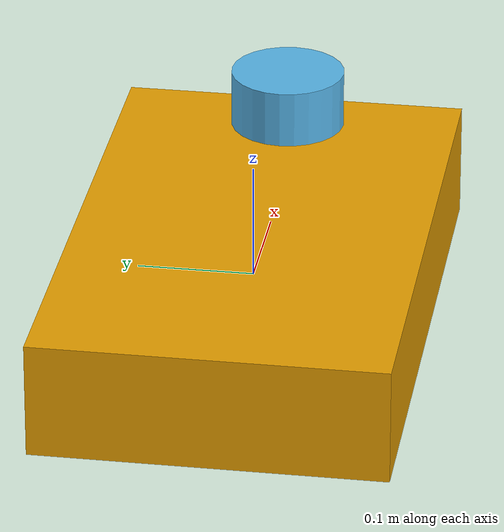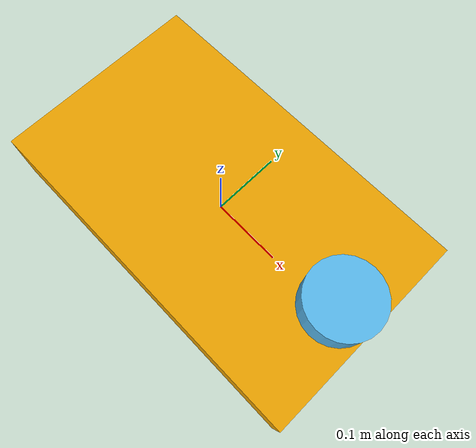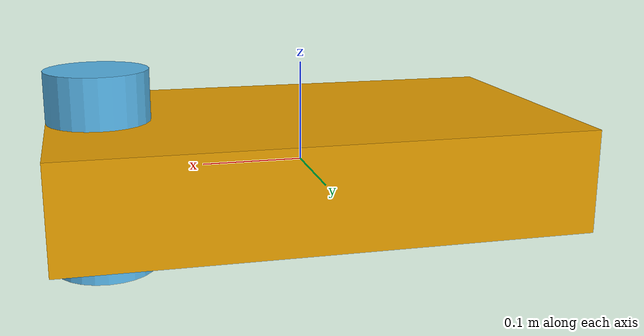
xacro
<?xml version="1.0"?>
<robot xmlns:xacro="http://www.ros.org/wiki/xacro" name="steering_robot">

  <xacro:include filename="$(find caddy_ai2_ros2_control_system_steering_driver)/description/ros2_control/system_steering.ros2_control.urdf" />

  <link name="base_link">
    <visual>
      <geometry>
        <box size="0.5 0.3 0.1"/>
      </geometry>
    </visual>
  </link>

  <link name="steering_link">
    <visual>
      <geometry>
        <cylinder radius="0.05" length="0.2"/>
      </geometry>
    </visual>
  </link>

  <joint name="steering_joint" type="revolute">
    <parent link="base_link"/>
    <child link="steering_link"/>
    <origin xyz="0.2 0 0" rpy="0 0 0"/>
    <axis xyz="0 0 1"/>
    <limit lower="-0.4" upper="0.4" effort="100" velocity="1.0"/>
  </joint>

  <xacro:system_steering_ros2_control update_rate="$(arg update_rate)"/>

</robot>
